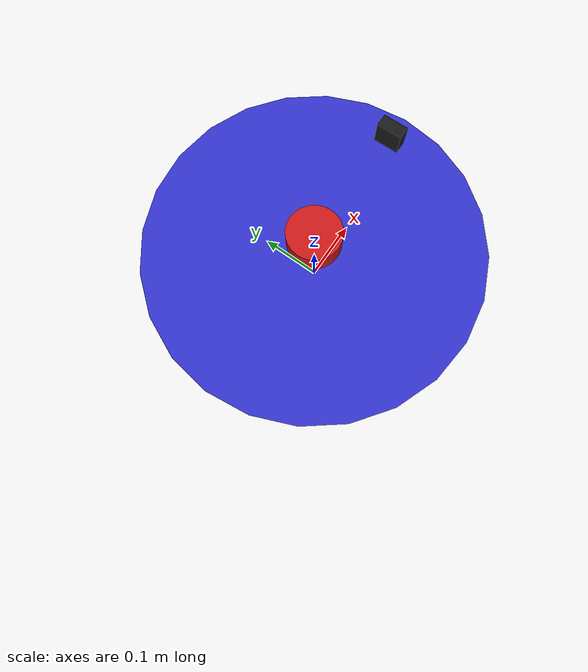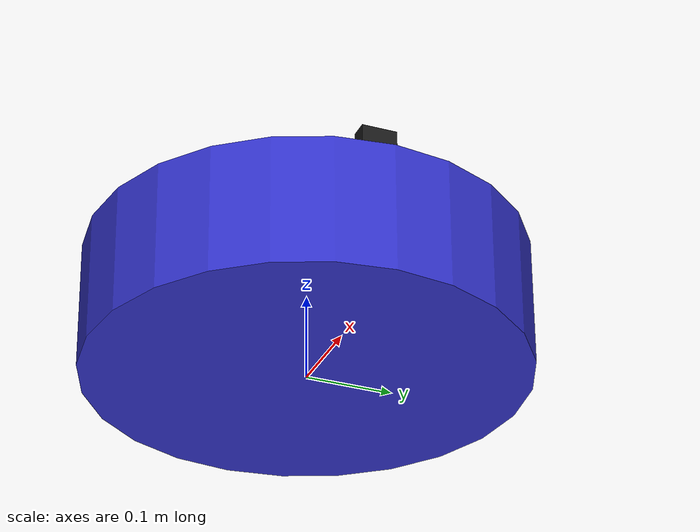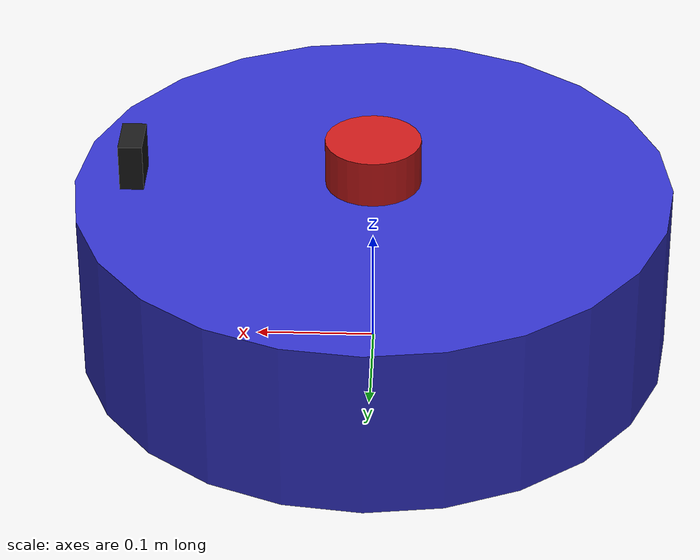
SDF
<?xml version="1.0" ?>
<sdf version="1.9">
  <model name="amr_robot">
    <pose>0 0 0.075 0 0 0</pose>

    <!-- Base link — differential drive chassis -->
    <link name="__NS__/base_link">
      <inertial>
        <mass>10.0</mass>
        <inertia>
          <ixx>0.1</ixx><iyy>0.1</iyy><izz>0.15</izz>
          <ixy>0</ixy><ixz>0</ixz><iyz>0</iyz>
        </inertia>
      </inertial>
      <collision name="collision">
        <pose>0 0 0.02 0 0 0</pose>
        <geometry><cylinder><radius>0.25</radius><length>0.11</length></cylinder></geometry>
      </collision>
      <visual name="visual">
        <geometry><cylinder><radius>0.25</radius><length>0.15</length></cylinder></geometry>
        <material>
          <ambient>0.2 0.2 0.8 1</ambient>
          <diffuse>0.2 0.2 0.8 1</diffuse>
        </material>
      </visual>
    </link>

    <!-- Left wheel -->
    <link name="__NS__/left_wheel">
      <pose relative_to="__NS__/base_link">0 0.2 -0.025 -1.5708 0 0</pose>
      <inertial>
        <mass>0.5</mass>
        <inertia>
          <ixx>0.001</ixx><iyy>0.001</iyy><izz>0.001</izz>
          <ixy>0</ixy><ixz>0</ixz><iyz>0</iyz>
        </inertia>
      </inertial>
      <collision name="collision">
        <geometry><cylinder><radius>0.05</radius><length>0.04</length></cylinder></geometry>
        <surface>
          <friction><ode><mu>1.0</mu><mu2>1.0</mu2></ode></friction>
        </surface>
      </collision>
      <visual name="visual">
        <geometry><cylinder><radius>0.05</radius><length>0.04</length></cylinder></geometry>
        <material><ambient>0.1 0.1 0.1 1</ambient><diffuse>0.1 0.1 0.1 1</diffuse></material>
      </visual>
    </link>

    <!-- Right wheel -->
    <link name="__NS__/right_wheel">
      <pose relative_to="__NS__/base_link">0 -0.2 -0.025 -1.5708 0 0</pose>
      <inertial>
        <mass>0.5</mass>
        <inertia>
          <ixx>0.001</ixx><iyy>0.001</iyy><izz>0.001</izz>
          <ixy>0</ixy><ixz>0</ixz><iyz>0</iyz>
        </inertia>
      </inertial>
      <collision name="collision">
        <geometry><cylinder><radius>0.05</radius><length>0.04</length></cylinder></geometry>
        <surface>
          <friction><ode><mu>1.0</mu><mu2>1.0</mu2></ode></friction>
        </surface>
      </collision>
      <visual name="visual">
        <geometry><cylinder><radius>0.05</radius><length>0.04</length></cylinder></geometry>
        <material><ambient>0.1 0.1 0.1 1</ambient><diffuse>0.1 0.1 0.1 1</diffuse></material>
      </visual>
    </link>

    <!-- Rear Caster (passive support) -->
    <link name="__NS__/caster">
      <pose relative_to="__NS__/base_link">-0.15 0 -0.05 0 0 0</pose>
      <inertial>
        <mass>0.2</mass>
        <inertia>
          <ixx>0.0001</ixx><iyy>0.0001</iyy><izz>0.0001</izz>
          <ixy>0</ixy><ixz>0</ixz><iyz>0</iyz>
        </inertia>
      </inertial>
      <collision name="collision">
        <geometry><sphere><radius>0.025</radius></sphere></geometry>
        <surface>
          <friction><ode><mu>0.0</mu><mu2>0.0</mu2></ode></friction>
        </surface>
      </collision>
      <visual name="visual">
        <geometry><sphere><radius>0.025</radius></sphere></geometry>
        <material><ambient>0.1 0.1 0.1 1</ambient><diffuse>0.1 0.1 0.1 1</diffuse></material>
      </visual>
    </link>

    <!-- Front Caster (passive support) -->
    <link name="__NS__/caster_front">
      <pose relative_to="__NS__/base_link">0.15 0 -0.05 0 0 0</pose>
      <inertial>
        <mass>0.2</mass>
        <inertia>
          <ixx>0.0001</ixx><iyy>0.0001</iyy><izz>0.0001</izz>
          <ixy>0</ixy><ixz>0</ixz><iyz>0</iyz>
        </inertia>
      </inertial>
      <collision name="collision">
        <geometry><sphere><radius>0.025</radius></sphere></geometry>
        <surface>
          <friction><ode><mu>0.0</mu><mu2>0.0</mu2></ode></friction>
        </surface>
      </collision>
      <visual name="visual">
        <geometry><sphere><radius>0.025</radius></sphere></geometry>
        <material><ambient>0.1 0.1 0.1 1</ambient><diffuse>0.1 0.1 0.1 1</diffuse></material>
      </visual>
    </link>

    <!-- Lidar sensor link -->
    <link name="__NS__/lidar_link">
      <pose relative_to="__NS__/base_link">0 0 0.1 0 0 0</pose>
      <inertial>
        <mass>0.1</mass>
        <inertia>
          <ixx>0.0001</ixx><iyy>0.0001</iyy><izz>0.0001</izz>
          <ixy>0</ixy><ixz>0</ixz><iyz>0</iyz>
        </inertia>
      </inertial>
      <collision name="collision">
        <geometry><cylinder><radius>0.04</radius><length>0.04</length></cylinder></geometry>
      </collision>
      <visual name="visual">
        <geometry><cylinder><radius>0.04</radius><length>0.04</length></cylinder></geometry>
        <material><ambient>0.8 0.1 0.1 1</ambient><diffuse>0.8 0.1 0.1 1</diffuse></material>
      </visual>
      <sensor name="lidar" type="gpu_lidar">
        <always_on>true</always_on>
        <update_rate>10</update_rate>
        <visualize>true</visualize>
        <topic>__NS__/scan</topic>
        <gz_frame_id>__NS__/base_link</gz_frame_id>
        <lidar>
          <scan>
            <horizontal>
              <samples>360</samples>
              <resolution>1</resolution>
              <min_angle>-3.14159</min_angle>
              <max_angle>3.14159</max_angle>
            </horizontal>
          </scan>
          <range>
            <min>0.12</min>
            <max>12.0</max>
            <resolution>0.01</resolution>
          </range>
          <noise>
            <type>gaussian</type>
            <mean>0.0</mean>
            <stddev>0.01</stddev>
          </noise>
        </lidar>
      </sensor>
    </link>

    <!-- IMU link — real inertial sensor, fused by robot_localization EKF -->
    <link name="__NS__/imu_link">
      <pose relative_to="__NS__/base_link">0 0 0.05 0 0 0</pose>
      <inertial>
        <mass>0.01</mass>
        <inertia>
          <ixx>0.000001</ixx><iyy>0.000001</iyy><izz>0.000001</izz>
          <ixy>0</ixy><ixz>0</ixz><iyz>0</iyz>
        </inertia>
      </inertial>
      <sensor name="imu" type="imu">
        <always_on>true</always_on>
        <update_rate>100</update_rate>
        <topic>__NS__/imu</topic>
        <gz_frame_id>__NS__/imu_link</gz_frame_id>
        <imu>
          <angular_velocity>
            <x><noise type="gaussian"><mean>0.0</mean><stddev>0.005</stddev></noise></x>
            <y><noise type="gaussian"><mean>0.0</mean><stddev>0.005</stddev></noise></y>
            <z><noise type="gaussian"><mean>0.0</mean><stddev>0.005</stddev></noise></z>
          </angular_velocity>
          <linear_acceleration>
            <x><noise type="gaussian"><mean>0.0</mean><stddev>0.01</stddev></noise></x>
            <y><noise type="gaussian"><mean>0.0</mean><stddev>0.01</stddev></noise></y>
            <z><noise type="gaussian"><mean>0.0</mean><stddev>0.01</stddev></noise></z>
          </linear_acceleration>
        </imu>
      </sensor>
    </link>

    <!-- Camera link (stub — topic present, no detection logic) -->
    <link name="__NS__/camera_link">
      <pose relative_to="__NS__/base_link">0.2 0 0.1 0 0 0</pose>
      <inertial>
        <mass>0.05</mass>
        <inertia>
          <ixx>0.00001</ixx><iyy>0.00001</iyy><izz>0.00001</izz>
          <ixy>0</ixy><ixz>0</ixz><iyz>0</iyz>
        </inertia>
      </inertial>
      <visual name="visual">
        <geometry><box><size>0.02 0.04 0.04</size></box></geometry>
        <material><ambient>0.1 0.1 0.1 1</ambient><diffuse>0.1 0.1 0.1 1</diffuse></material>
      </visual>
      <sensor name="camera" type="camera">
        <always_on>true</always_on>
        <update_rate>15</update_rate>
        <topic>__NS__/camera/image_raw</topic>
        <gz_frame_id>__NS__/camera_link</gz_frame_id>
        <camera>
          <horizontal_fov>1.39626</horizontal_fov>
          <image><width>320</width><height>240</height></image>
          <clip><near>0.1</near><far>100</far></clip>
        </camera>
      </sensor>
    </link>

    <!-- Joints -->
    <joint name="left_wheel_joint" type="revolute">
      <parent>__NS__/base_link</parent>
      <child>__NS__/left_wheel</child>
      <axis><xyz>0 0 1</xyz></axis>
    </joint>

    <joint name="right_wheel_joint" type="revolute">
      <parent>__NS__/base_link</parent>
      <child>__NS__/right_wheel</child>
      <axis><xyz>0 0 1</xyz></axis>
    </joint>

    <joint name="caster_joint" type="ball">
      <parent>__NS__/base_link</parent>
      <child>__NS__/caster</child>
    </joint>

    <joint name="caster_front_joint" type="ball">
      <parent>__NS__/base_link</parent>
      <child>__NS__/caster_front</child>
    </joint>

    <joint name="lidar_joint" type="fixed">
      <parent>__NS__/base_link</parent>
      <child>__NS__/lidar_link</child>
    </joint>

    <joint name="camera_joint" type="fixed">
      <parent>__NS__/base_link</parent>
      <child>__NS__/camera_link</child>
    </joint>

    <joint name="imu_joint" type="fixed">
      <parent>__NS__/base_link</parent>
      <child>__NS__/imu_link</child>
    </joint>

    <!-- Diff-drive plugin -->
    <plugin filename="gz-sim-diff-drive-system" name="gz::sim::systems::DiffDrive">
      <left_joint>left_wheel_joint</left_joint>
      <right_joint>right_wheel_joint</right_joint>
      <wheel_separation>0.4</wheel_separation>
      <wheel_radius>0.05</wheel_radius>
      <max_linear_acceleration>1.0</max_linear_acceleration>
      <max_angular_acceleration>2.0</max_angular_acceleration>
      <max_linear_velocity>0.5</max_linear_velocity>
      <max_angular_velocity>1.0</max_angular_velocity>
      <topic>__NS__/cmd_vel</topic>
      <odom_topic>__NS__/odom</odom_topic>
      <tf_topic>__NS__/tf</tf_topic>
      <frame_id>__NS__/odom</frame_id>
      <child_frame_id>__NS__/base_link</child_frame_id>
      <odom_publish_frequency>20</odom_publish_frequency>
    </plugin>

    <!-- Pose publisher for ground-truth localization -->
    <plugin
      filename="gz-sim-pose-publisher-system"
      name="gz::sim::systems::PosePublisher">
      <publish_link_pose>false</publish_link_pose>
      <publish_sensor_pose>false</publish_sensor_pose>
      <publish_collision_pose>false</publish_collision_pose>
      <publish_visual_pose>false</publish_visual_pose>
      <publish_nested_model_pose>true</publish_nested_model_pose>
      <update_frequency>20</update_frequency>
    </plugin>

    <!-- Joint state publisher -->
    <plugin filename="gz-sim-joint-state-publisher-system" name="gz::sim::systems::JointStatePublisher">
      <joint_name>left_wheel_joint</joint_name>
      <joint_name>right_wheel_joint</joint_name>
      <update_rate>20</update_rate>
    </plugin>

  </model>
</sdf>
